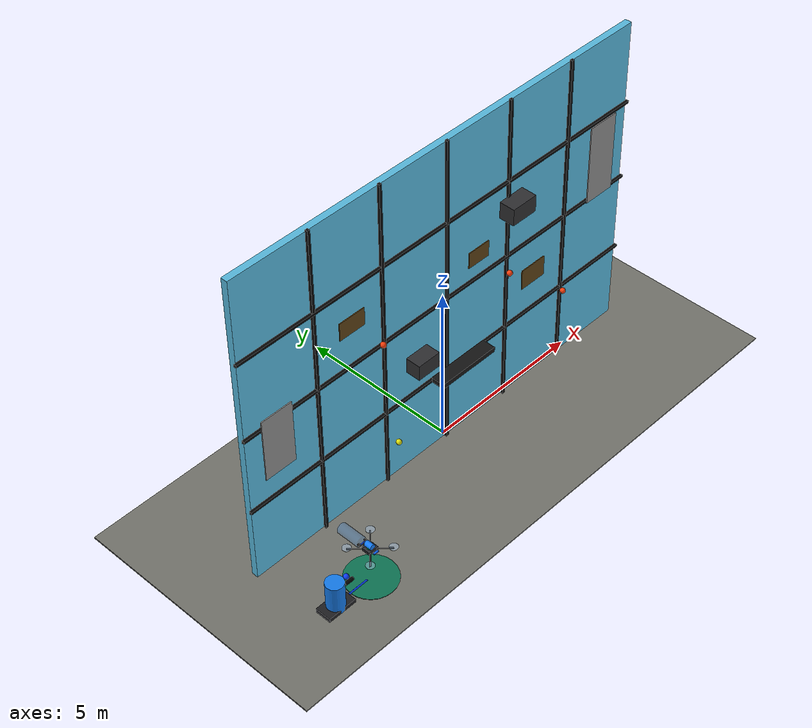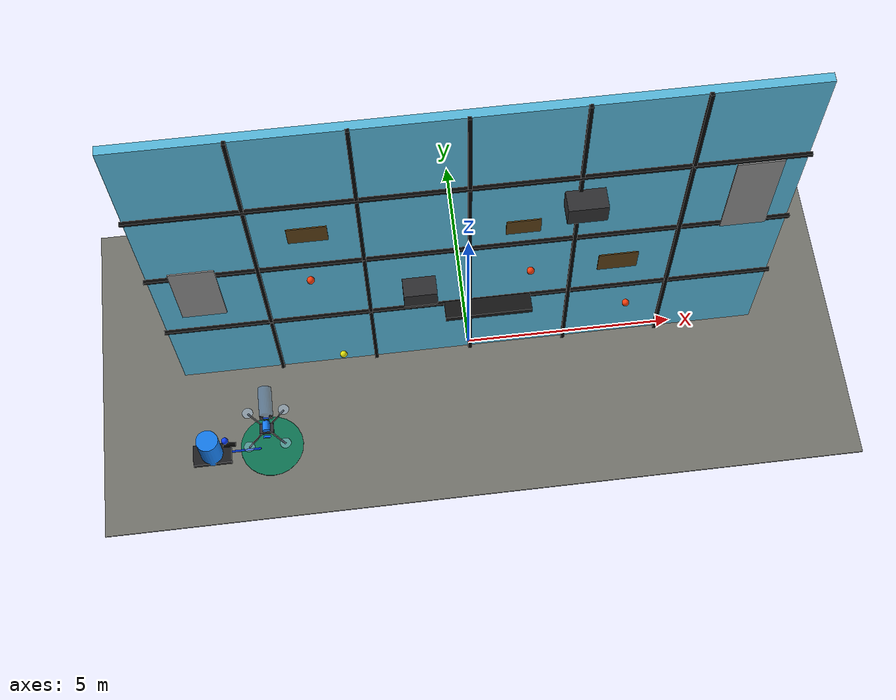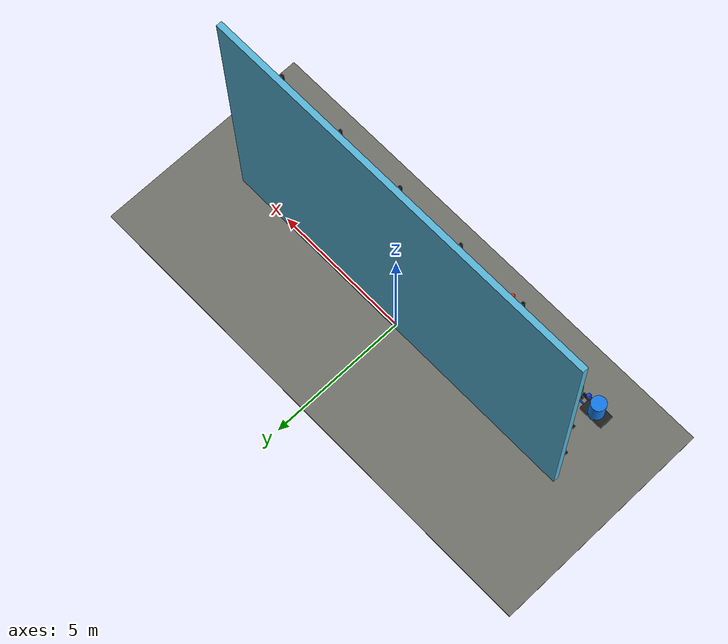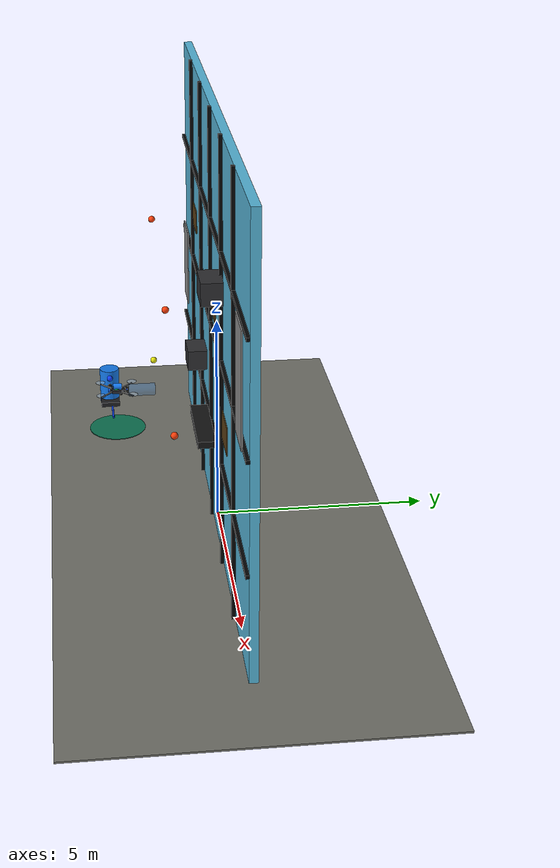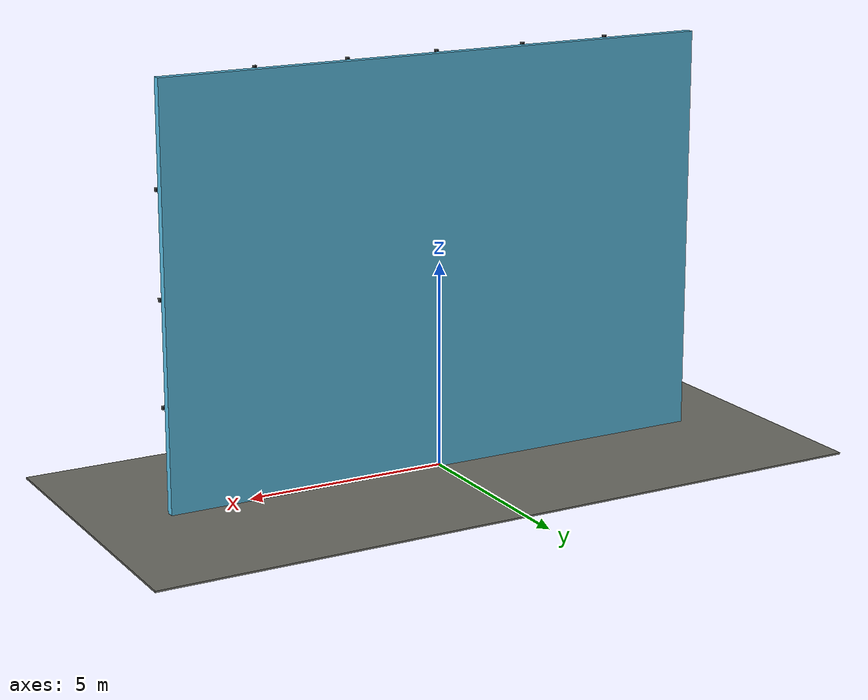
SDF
<?xml version="1.0" ?>
<sdf version="1.9">
  <world name="interview_facade_cleaning_world">
    <gravity>0 0 -9.81</gravity>
    <scene>
      <ambient>0.62 0.64 0.66 1</ambient>
      <background>0.72 0.82 0.92 1</background>
    </scene>

    <wind>
      <linear_velocity>2.0 0.2 0</linear_velocity>
    </wind>

    <model name="ground_and_start_pad">
      <static>true</static>
      <pose>0 0 -0.03 0 0 0</pose>
      <link name="ground">
        <visual name="concrete_floor">
          <geometry><box><size>18 8 0.04</size></box></geometry>
          <material>
            <ambient>0.38 0.38 0.36 1</ambient>
            <diffuse>0.45 0.45 0.42 1</diffuse>
          </material>
        </visual>
        <visual name="start_pad">
          <pose>-5 -2.2 0.025 0 0 0</pose>
          <geometry><cylinder><radius>0.75</radius><length>0.025</length></cylinder></geometry>
          <material>
            <ambient>0.05 0.16 0.12 1</ambient>
            <diffuse>0.05 0.45 0.32 1</diffuse>
          </material>
        </visual>
      </link>
    </model>

    <model name="water_refill_station">
      <static>true</static>
      <pose>-6.4 -2.35 0.65 0 0 0</pose>
      <link name="station">
        <visual name="base_cart">
          <pose>0 0 -0.42 0 0 0</pose>
          <geometry><box><size>0.9 0.5 0.12</size></box></geometry>
          <material><ambient>0.08 0.08 0.09 1</ambient><diffuse>0.12 0.12 0.13 1</diffuse></material>
        </visual>
        <visual name="water_tank">
          <pose>0 0 0 0 0 0</pose>
          <geometry><cylinder><radius>0.26</radius><length>0.95</length></cylinder></geometry>
          <material><ambient>0.05 0.32 0.65 1</ambient><diffuse>0.08 0.48 0.92 1</diffuse></material>
        </visual>
        <visual name="quick_connect_nozzle">
          <pose>0.48 0 0.1 0 1.5708 0</pose>
          <geometry><cylinder><radius>0.055</radius><length>0.28</length></cylinder></geometry>
          <material><ambient>0.04 0.04 0.04 1</ambient><diffuse>0.02 0.02 0.02 1</diffuse></material>
        </visual>
      </link>
    </model>

    <model name="water_supply_hose">
      <static>true</static>
      <pose>-5.85 -2.3 0.17 0 1.5708 0</pose>
      <link name="hose">
        <visual name="blue_hose_to_start_pad">
          <geometry><cylinder><radius>0.025</radius><length>1.2</length></cylinder></geometry>
          <material><ambient>0.02 0.18 0.75 1</ambient><diffuse>0.02 0.25 0.95 1</diffuse></material>
        </visual>
      </link>
    </model>

    <model name="washable_glass_facade">
      <static>true</static>
      <pose>0 0 5 0 0 0</pose>
      <link name="facade">
        <collision name="wall_collision">
          <geometry><box><size>14 0.2 10</size></box></geometry>
        </collision>
        <visual name="glass_curtain_wall">
          <geometry><box><size>14 0.2 10</size></box></geometry>
          <material>
            <ambient>0.22 0.42 0.52 1</ambient>
            <diffuse>0.34 0.72 0.86 1</diffuse>
            <specular>0.85 0.85 0.85 1</specular>
          </material>
        </visual>
      </link>
    </model>

    <model name="window_frame_grid">
      <static>true</static>
      <pose>0 -0.14 5 0 0 0</pose>
      <link name="frames">
        <visual name="vertical_frame_left"><pose>-4.6 0 0 0 0 0</pose><geometry><box><size>0.08 0.08 10.1</size></box></geometry><material><ambient>0.02 0.02 0.02 1</ambient><diffuse>0.02 0.02 0.02 1</diffuse></material></visual>
        <visual name="vertical_frame_mid_left"><pose>-2.3 0 0 0 0 0</pose><geometry><box><size>0.08 0.08 10.1</size></box></geometry><material><ambient>0.02 0.02 0.02 1</ambient><diffuse>0.02 0.02 0.02 1</diffuse></material></visual>
        <visual name="vertical_frame_center"><pose>0 0 0 0 0 0</pose><geometry><box><size>0.08 0.08 10.1</size></box></geometry><material><ambient>0.02 0.02 0.02 1</ambient><diffuse>0.02 0.02 0.02 1</diffuse></material></visual>
        <visual name="vertical_frame_mid_right"><pose>2.3 0 0 0 0 0</pose><geometry><box><size>0.08 0.08 10.1</size></box></geometry><material><ambient>0.02 0.02 0.02 1</ambient><diffuse>0.02 0.02 0.02 1</diffuse></material></visual>
        <visual name="vertical_frame_right"><pose>4.6 0 0 0 0 0</pose><geometry><box><size>0.08 0.08 10.1</size></box></geometry><material><ambient>0.02 0.02 0.02 1</ambient><diffuse>0.02 0.02 0.02 1</diffuse></material></visual>
        <visual name="horizontal_frame_low"><pose>0 0 -2.5 0 0 0</pose><geometry><box><size>14.1 0.08 0.08</size></box></geometry><material><ambient>0.02 0.02 0.02 1</ambient><diffuse>0.02 0.02 0.02 1</diffuse></material></visual>
        <visual name="horizontal_frame_mid"><pose>0 0 0 0 0 0</pose><geometry><box><size>14.1 0.08 0.08</size></box></geometry><material><ambient>0.02 0.02 0.02 1</ambient><diffuse>0.02 0.02 0.02 1</diffuse></material></visual>
        <visual name="horizontal_frame_high"><pose>0 0 2.5 0 0 0</pose><geometry><box><size>14.1 0.08 0.08</size></box></geometry><material><ambient>0.02 0.02 0.02 1</ambient><diffuse>0.02 0.02 0.02 1</diffuse></material></visual>
      </link>
    </model>

    <model name="dirty_target_patches">
      <static>true</static>
      <pose>0 -0.18 5 0 0 0</pose>
      <link name="dirt">
        <visual name="washable_dirt_1"><pose>-3.4 0 1.4 0 0 0</pose><geometry><box><size>0.85 0.025 0.55</size></box></geometry><material><ambient>0.25 0.18 0.08 1</ambient><diffuse>0.36 0.25 0.08 1</diffuse></material></visual>
        <visual name="washable_dirt_2"><pose>1.15 0 0.8 0 0 0</pose><geometry><box><size>0.75 0.025 0.5</size></box></geometry><material><ambient>0.25 0.18 0.08 1</ambient><diffuse>0.36 0.25 0.08 1</diffuse></material></visual>
        <visual name="washable_dirt_3"><pose>3.35 0 -1.2 0 0 0</pose><geometry><box><size>0.9 0.025 0.65</size></box></geometry><material><ambient>0.25 0.18 0.08 1</ambient><diffuse>0.36 0.25 0.08 1</diffuse></material></visual>
      </link>
    </model>

    <model name="skip_zone_concrete_panels">
      <static>true</static>
      <pose>0 -0.19 5 0 0 0</pose>
      <link name="skip">
        <visual name="concrete_skip_left"><pose>-6.0 0 -0.7 0 0 0</pose><geometry><box><size>1.0 0.03 2.0</size></box></geometry><material><ambient>0.42 0.42 0.42 1</ambient><diffuse>0.55 0.55 0.55 1</diffuse></material></visual>
        <visual name="concrete_skip_right"><pose>6.0 0 1.2 0 0 0</pose><geometry><box><size>1.0 0.03 2.5</size></box></geometry><material><ambient>0.42 0.42 0.42 1</ambient><diffuse>0.55 0.55 0.55 1</diffuse></material></visual>
      </link>
    </model>

    <model name="obstacle_ac_units">
      <static>true</static>
      <pose>0 -0.38 5 0 0 0</pose>
      <link name="obstacles">
        <visual name="ac_unit_low"><pose>-1.15 0 -1.3 0 0 0</pose><geometry><box><size>0.75 0.46 0.48</size></box></geometry><material><ambient>0.12 0.12 0.13 1</ambient><diffuse>0.18 0.18 0.19 1</diffuse></material></visual>
        <visual name="ac_unit_high"><pose>2.4 0 1.75 0 0 0</pose><geometry><box><size>0.85 0.48 0.52</size></box></geometry><material><ambient>0.12 0.12 0.13 1</ambient><diffuse>0.18 0.18 0.19 1</diffuse></material></visual>
        <visual name="maintenance_ledge"><pose>0.4 0 -2.45 0 0 0</pose><geometry><box><size>2.0 0.42 0.16</size></box></geometry><material><ambient>0.05 0.05 0.05 1</ambient><diffuse>0.08 0.08 0.08 1</diffuse></material></visual>
      </link>
    </model>

    <model name="facade_cleaning_quadcopter_visual">
      <static>true</static>
      <pose>-5 -2.2 1.1 0 0 0</pose>
      <link name="uav">
        <visual name="central_body"><geometry><box><size>0.32 0.24 0.075</size></box></geometry><material><ambient>0.12 0.12 0.13 1</ambient><diffuse>0.18 0.18 0.2 1</diffuse></material></visual>
        <visual name="front_right_arm"><pose>0.21 0.21 0 0 0 0.785398</pose><geometry><box><size>0.6 0.035 0.024</size></box></geometry><material><ambient>0.04 0.04 0.04 1</ambient><diffuse>0.06 0.06 0.06 1</diffuse></material></visual>
        <visual name="front_left_arm"><pose>-0.21 0.21 0 0 0 -0.785398</pose><geometry><box><size>0.6 0.035 0.024</size></box></geometry><material><ambient>0.04 0.04 0.04 1</ambient><diffuse>0.06 0.06 0.06 1</diffuse></material></visual>
        <visual name="rear_right_arm"><pose>0.21 -0.21 0 0 0 -0.785398</pose><geometry><box><size>0.6 0.035 0.024</size></box></geometry><material><ambient>0.04 0.04 0.04 1</ambient><diffuse>0.06 0.06 0.06 1</diffuse></material></visual>
        <visual name="rear_left_arm"><pose>-0.21 -0.21 0 0 0 0.785398</pose><geometry><box><size>0.6 0.035 0.024</size></box></geometry><material><ambient>0.04 0.04 0.04 1</ambient><diffuse>0.06 0.06 0.06 1</diffuse></material></visual>
        <visual name="water_reservoir"><pose>0 0.02 0.1 1.5708 0 0</pose><geometry><cylinder><radius>0.09</radius><length>0.22</length></cylinder></geometry><material><ambient>0.05 0.35 0.8 1</ambient><diffuse>0.08 0.48 0.95 1</diffuse></material></visual>
        <visual name="front_pump"><pose>0 0.18 -0.02 0 0 0</pose><geometry><box><size>0.13 0.08 0.07</size></box></geometry><material><ambient>0.08 0.08 0.09 1</ambient><diffuse>0.12 0.12 0.13 1</diffuse></material></visual>
        <visual name="water_jet_spray_bar"><pose>0 0.27 -0.015 0 0 0</pose><geometry><box><size>0.28 0.03 0.018</size></box></geometry><material><ambient>0.05 0.18 0.85 1</ambient><diffuse>0.06 0.28 0.95 1</diffuse></material></visual>
        <visual name="left_blower_duct"><pose>-0.11 0.285 -0.01 1.5708 0 0</pose><geometry><cylinder><radius>0.04</radius><length>0.07</length></cylinder></geometry><material><ambient>0.06 0.06 0.06 1</ambient><diffuse>0.1 0.1 0.1 1</diffuse></material></visual>
        <visual name="right_blower_duct"><pose>0.11 0.285 -0.01 1.5708 0 0</pose><geometry><cylinder><radius>0.04</radius><length>0.07</length></cylinder></geometry><material><ambient>0.06 0.06 0.06 1</ambient><diffuse>0.1 0.1 0.1 1</diffuse></material></visual>
        <visual name="rgb_thermal_lidar_gimbal"><pose>0 0.11 -0.09 0 0 0</pose><geometry><box><size>0.1 0.065 0.075</size></box></geometry><material><ambient>0.01 0.01 0.01 1</ambient><diffuse>0.02 0.02 0.02 1</diffuse></material></visual>
        <visual name="quick_connect_hose_socket"><pose>0 -0.2 0 0 0 0</pose><geometry><box><size>0.16 0.05 0.035</size></box></geometry><material><ambient>0.05 0.35 0.95 1</ambient><diffuse>0.05 0.4 1 1</diffuse></material></visual>
        <visual name="spray_visual_cone"><pose>0 0.68 -0.015 1.5708 0 0</pose><geometry><cylinder><radius>0.16</radius><length>0.7</length></cylinder></geometry><material><ambient>0.15 0.55 1 0.25</ambient><diffuse>0.15 0.55 1 0.25</diffuse></material></visual>
        <visual name="rotor_front_right"><pose>0.42 0.42 0.045 0 0 0</pose><geometry><cylinder><radius>0.127</radius><length>0.006</length></cylinder></geometry><material><ambient>0.7 0.82 0.95 0.45</ambient><diffuse>0.7 0.82 0.95 0.45</diffuse></material></visual>
        <visual name="rotor_front_left"><pose>-0.42 0.42 0.045 0 0 0</pose><geometry><cylinder><radius>0.127</radius><length>0.006</length></cylinder></geometry><material><ambient>0.7 0.82 0.95 0.45</ambient><diffuse>0.7 0.82 0.95 0.45</diffuse></material></visual>
        <visual name="rotor_rear_right"><pose>0.42 -0.42 0.045 0 0 0</pose><geometry><cylinder><radius>0.127</radius><length>0.006</length></cylinder></geometry><material><ambient>0.7 0.82 0.95 0.45</ambient><diffuse>0.7 0.82 0.95 0.45</diffuse></material></visual>
        <visual name="rotor_rear_left"><pose>-0.42 -0.42 0.045 0 0 0</pose><geometry><cylinder><radius>0.127</radius><length>0.006</length></cylinder></geometry><material><ambient>0.7 0.82 0.95 0.45</ambient><diffuse>0.7 0.82 0.95 0.45</diffuse></material></visual>
      </link>
    </model>

    <model name="mission_route_markers">
      <static>true</static>
      <pose>0 0 0 0 0 0</pose>
      <link name="route">
        <visual name="waypoint_start"><pose>-5 -2.2 1.15 0 0 0</pose><geometry><sphere><radius>0.09</radius></sphere></geometry><material><ambient>0.05 0.9 0.4 1</ambient><diffuse>0.05 0.9 0.4 1</diffuse></material></visual>
        <visual name="waypoint_refill"><pose>-6.0 -2.35 1.0 0 0 0</pose><geometry><sphere><radius>0.08</radius></sphere></geometry><material><ambient>0.05 0.25 1 1</ambient><diffuse>0.05 0.25 1 1</diffuse></material></visual>
        <visual name="waypoint_scan"><pose>-3 -1.3 2.8 0 0 0</pose><geometry><sphere><radius>0.08</radius></sphere></geometry><material><ambient>0.9 0.9 0.05 1</ambient><diffuse>0.9 0.9 0.05 1</diffuse></material></visual>
        <visual name="waypoint_clean_1"><pose>-3.4 -1.25 6.4 0 0 0</pose><geometry><sphere><radius>0.08</radius></sphere></geometry><material><ambient>1 0.25 0.05 1</ambient><diffuse>1 0.25 0.05 1</diffuse></material></visual>
        <visual name="waypoint_clean_2"><pose>1.15 -1.25 5.8 0 0 0</pose><geometry><sphere><radius>0.08</radius></sphere></geometry><material><ambient>1 0.25 0.05 1</ambient><diffuse>1 0.25 0.05 1</diffuse></material></visual>
        <visual name="waypoint_clean_3"><pose>3.35 -1.25 3.8 0 0 0</pose><geometry><sphere><radius>0.08</radius></sphere></geometry><material><ambient>1 0.25 0.05 1</ambient><diffuse>1 0.25 0.05 1</diffuse></material></visual>
      </link>
    </model>
  </world>
</sdf>
